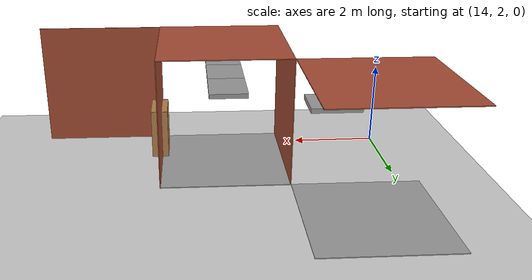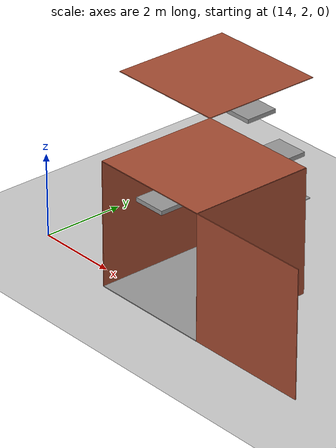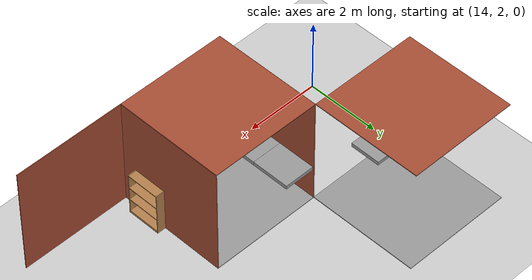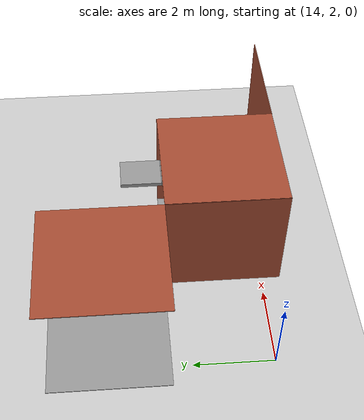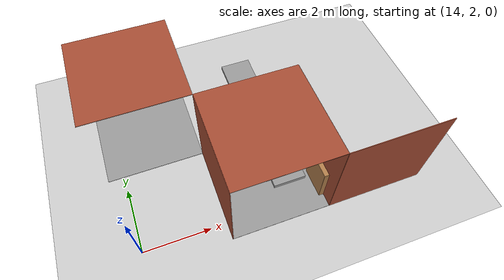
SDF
<sdf version="1.6">
 <world name="default">
  <model name="ground_plane">
   <static>1</static>
   <link name="link">
    <collision name="collision">
     <geometry><plane><normal>0 0 1</normal><size>200 200</size></plane></geometry>
     <surface><friction><ode><mu>100</mu><mu2>50</mu2></ode></friction></surface>
    </collision>
    <visual name="visual">
     <cast_shadows>0</cast_shadows>
     <geometry><plane><normal>0 0 1</normal><size>200 200</size></plane></geometry>
     <material>
      <script><uri>file://media/materials/scripts/gazebo.material</uri><name>Gazebo/Grey</name></script>
     </material>
    </visual>
   </link>
  </model>
  <model name="wall_top_5_2_0_3">
   <static>1</static>
   <pose>15.0 6.0 3.0 1.57 0.0 3.14</pose>
   <link name="link">
    <collision name="collision"><geometry><box><size>3 0.02 3</size></box></geometry></collision>
    <visual name="visual">
     <material>
      <script><name>Gazebo/Bricks</name><uri>file://media/materials/scripts/gazebo.material</uri></script>
     </material>
     <geometry><box><size>3 0.02 3</size></box></geometry>
    </visual>
   </link>
  </model>
  <model name="ceiling_1_5_2_1_3">
   <pose>16.0 6.0 2.55 0.0 0.0 4.71</pose>
   <link name="link_1">
    <visual name="visual">
     <geometry><box><size>0.8 1 0.1</size></box></geometry>
     <material>
      <script><uri>file://media/materials/scripts/gazebo.material</uri><name>Gazebo/Grey</name></script>
     </material>
    </visual>
    <collision name="collision"><geometry><box><size>0.8 1 0.1</size></box></geometry></collision>
   </link>
   <static>1</static>
  </model>
  <model name="wall_bottom_5_2_0_3">
   <static>1</static>
   <pose>15.0 6.0 0.0 0.0 0.0 3.14</pose>
   <link name="link">
    <collision name="collision"><geometry><box><size>3 3 0.02</size></box></geometry></collision>
    <visual name="visual">
     <material>
      <script><name>Gazebo/Grey</name><uri>file://media/materials/scripts/gazebo.material</uri></script>
     </material>
     <geometry><box><size>3 3 0.02</size></box></geometry>
    </visual>
   </link>
  </model>
  <model name="ceiling_1_6_2_1_2">
   <pose>18.0 5.0 2.55 0.0 0.0 0.0</pose>
   <link name="link_1">
    <visual name="visual">
     <geometry><box><size>0.8 1 0.1</size></box></geometry>
     <material>
      <script><uri>file://media/materials/scripts/gazebo.material</uri><name>Gazebo/Grey</name></script>
     </material>
    </visual>
    <collision name="collision"><geometry><box><size>0.8 1 0.1</size></box></geometry></collision>
   </link>
   <static>1</static>
  </model>
  <model name="wall_right_6_1_0_1">
   <static>1</static>
   <pose>16.5 3.0 1.5 0.0 0.0 4.71</pose>
   <link name="link">
    <collision name="collision"><geometry><box><size>3 0.02 3</size></box></geometry></collision>
    <visual name="visual">
     <material>
      <script><name>Gazebo/Bricks</name><uri>file://media/materials/scripts/gazebo.material</uri></script>
     </material>
     <geometry><box><size>3 0.02 3</size></box></geometry>
    </visual>
   </link>
  </model>
  <model name="wall_left_6_1_0_1">
   <static>1</static>
   <pose>19.5 3.0 1.5 0.0 0.0 4.71</pose>
   <link name="link">
    <collision name="collision"><geometry><box><size>3 0.02 3</size></box></geometry></collision>
    <visual name="visual">
     <material>
      <script><name>Gazebo/Bricks</name><uri>file://media/materials/scripts/gazebo.material</uri></script>
     </material>
     <geometry><box><size>3 0.02 3</size></box></geometry>
    </visual>
   </link>
  </model>
  <model name="wall_top_6_1_0_1">
   <static>1</static>
   <pose>18.0 3.0 3.0 1.57 0.0 3.14</pose>
   <link name="link">
    <collision name="collision"><geometry><box><size>3 0.02 3</size></box></geometry></collision>
    <visual name="visual">
     <material>
      <script><name>Gazebo/Bricks</name><uri>file://media/materials/scripts/gazebo.material</uri></script>
     </material>
     <geometry><box><size>3 0.02 3</size></box></geometry>
    </visual>
   </link>
  </model>
  <model name="ceiling_1_6_1_0_1">
   <pose>18.0 3.0 2.55 0.0 0.0 3.14</pose>
   <link name="link_1">
    <visual name="visual">
     <geometry><box><size>0.8 1 0.1</size></box></geometry>
     <material>
      <script><uri>file://media/materials/scripts/gazebo.material</uri><name>Gazebo/Grey</name></script>
     </material>
    </visual>
    <collision name="collision"><geometry><box><size>0.8 1 0.1</size></box></geometry></collision>
   </link>
   <static>1</static>
  </model>
  <model name="ceiling_1_6_1_1_1">
   <pose>18.0 4.0 2.55 0.0 0.0 3.14</pose>
   <link name="link_1">
    <visual name="visual">
     <geometry><box><size>0.8 1 0.1</size></box></geometry>
     <material>
      <script><uri>file://media/materials/scripts/gazebo.material</uri><name>Gazebo/Grey</name></script>
     </material>
    </visual>
    <collision name="collision"><geometry><box><size>0.8 1 0.1</size></box></geometry></collision>
   </link>
   <static>1</static>
  </model>
  <model name="ceiling_1_6_1_2_1">
   <pose>18.0 2.0 2.55 0.0 0.0 3.14</pose>
   <link name="link_1">
    <visual name="visual">
     <geometry><box><size>0.8 1 0.1</size></box></geometry>
     <material>
      <script><uri>file://media/materials/scripts/gazebo.material</uri><name>Gazebo/Grey</name></script>
     </material>
    </visual>
    <collision name="collision"><geometry><box><size>0.8 1 0.1</size></box></geometry></collision>
   </link>
   <static>1</static>
  </model>
  <model name="bookshelf_6_1_0_1">
   <static>true</static>
   <pose>19.35 2.3519090675655 0.0 0.0 0.0 3.14</pose>
   <link name="link">
    <pose>0 0 0 0 0 -1.57</pose>
    <inertial><mass>1.0</mass></inertial>
    <collision name="back">
     <pose>0 0.005 0.6 0 0 0</pose>
     <geometry><box><size>0.9 0.01 1.2</size></box></geometry>
    </collision>
    <visual name="visual1">
     <pose>0 0.005 0.6 0 0 0</pose>
     <geometry><box><size>0.9 0.01 1.2</size></box></geometry>
     <material>
      <script><uri>file://media/materials/scripts/gazebo.material</uri><name>Gazebo/Wood</name></script>
     </material>
    </visual>
    <collision name="left_side">
     <pose>0.45 -0.195 0.6 0 0 0</pose>
     <geometry><box><size>0.02 0.4 1.2</size></box></geometry>
    </collision>
    <visual name="visual2">
     <pose>0.45 -0.195 0.6 0 0 0</pose>
     <geometry><box><size>0.02 0.4 1.2</size></box></geometry>
     <material>
      <script><uri>file://media/materials/scripts/gazebo.material</uri><name>Gazebo/Wood</name></script>
     </material>
    </visual>
    <collision name="right_side">
     <pose>-0.45 -0.195 0.6 0 0 0</pose>
     <geometry><box><size>0.02 0.4 1.2</size></box></geometry>
    </collision>
    <visual name="visual3">
     <pose>-0.45 -0.195 0.6 0 0 0</pose>
     <geometry><box><size>0.02 0.4 1.2</size></box></geometry>
     <material>
      <script><uri>file://media/materials/scripts/gazebo.material</uri><name>Gazebo/Wood</name></script>
     </material>
    </visual>
    <collision name="bottom">
     <pose>0 -0.195 0.03 0 0 0</pose>
     <geometry><box><size>0.88 0.4 0.06</size></box></geometry>
    </collision>
    <visual name="visual4">
     <pose>0 -0.195 0.03 0 0 0</pose>
     <geometry><box><size>0.88 0.4 0.06</size></box></geometry>
     <material>
      <script><uri>file://media/materials/scripts/gazebo.material</uri><name>Gazebo/Wood</name></script>
     </material>
    </visual>
    <collision name="top">
     <pose>0 -0.195 1.19 0 0 0</pose>
     <geometry><box><size>0.88 0.4 0.02</size></box></geometry>
    </collision>
    <visual name="visual5">
     <pose>0 -0.195 1.19 0 0 0</pose>
     <geometry><box><size>0.88 0.4 0.02</size></box></geometry>
     <material>
      <script><uri>file://media/materials/scripts/gazebo.material</uri><name>Gazebo/Wood</name></script>
     </material>
    </visual>
    <collision name="low_shelf">
     <pose>0 -0.195 0.43 0 0 0</pose>
     <geometry><box><size>0.88 0.4 0.02</size></box></geometry>
    </collision>
    <visual name="visual6">
     <pose>0 -0.195 0.43 0 0 0</pose>
     <geometry><box><size>0.88 0.4 0.02</size></box></geometry>
     <material>
      <script><uri>file://media/materials/scripts/gazebo.material</uri><name>Gazebo/Wood</name></script>
     </material>
    </visual>
    <collision name="high_shelf">
     <pose>0 -0.195 0.8 0 0 0</pose>
     <geometry><box><size>0.88 0.4 0.02</size></box></geometry>
    </collision>
    <visual name="visual7">
     <pose>0 -0.195 0.8 0 0 0</pose>
     <geometry><box><size>0.88 0.4 0.02</size></box></geometry>
     <material>
      <script><uri>file://media/materials/scripts/gazebo.material</uri><name>Gazebo/Wood</name></script>
     </material>
    </visual>
   </link>
  </model>
  <model name="wall_bottom_6_1_0_1">
   <static>1</static>
   <pose>18.0 3.0 0.0 0.0 0.0 3.14</pose>
   <link name="link">
    <collision name="collision"><geometry><box><size>3 3 0.02</size></box></geometry></collision>
    <visual name="visual">
     <material>
      <script><name>Gazebo/Grey</name><uri>file://media/materials/scripts/gazebo.material</uri></script>
     </material>
     <geometry><box><size>3 3 0.02</size></box></geometry>
    </visual>
   </link>
  </model>
  <model name="wall_left_7_0_0_2">
   <static>1</static>
   <pose>21.0 1.5 1.5 0.0 0.0 0.0</pose>
   <link name="link">
    <collision name="collision"><geometry><box><size>3 0.02 3</size></box></geometry></collision>
    <visual name="visual">
     <material>
      <script><name>Gazebo/Bricks</name><uri>file://media/materials/scripts/gazebo.material</uri></script>
     </material>
     <geometry><box><size>3 0.02 3</size></box></geometry>
    </visual>
   </link>
  </model>
 </world>
</sdf>
